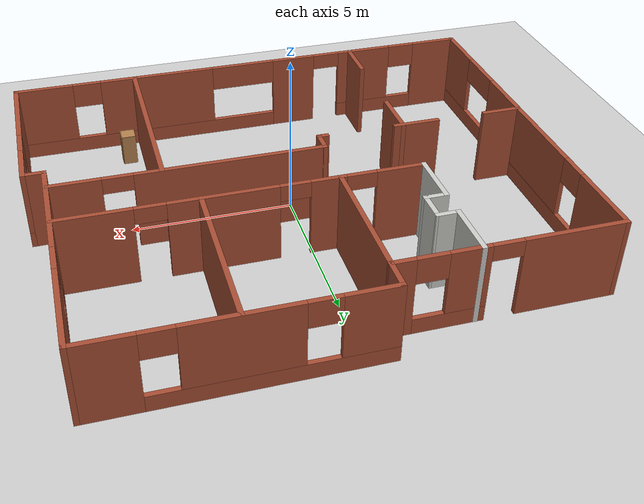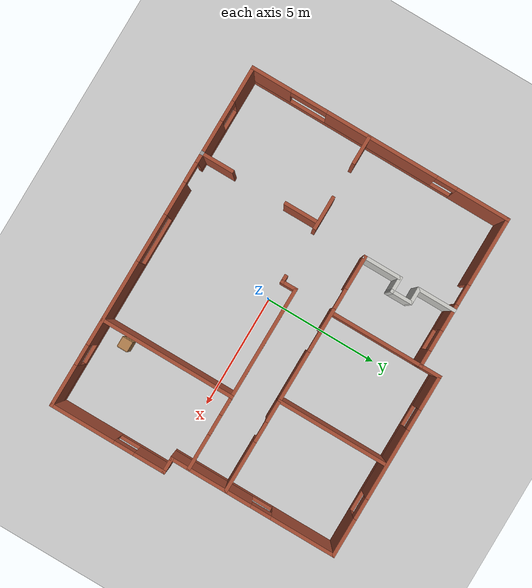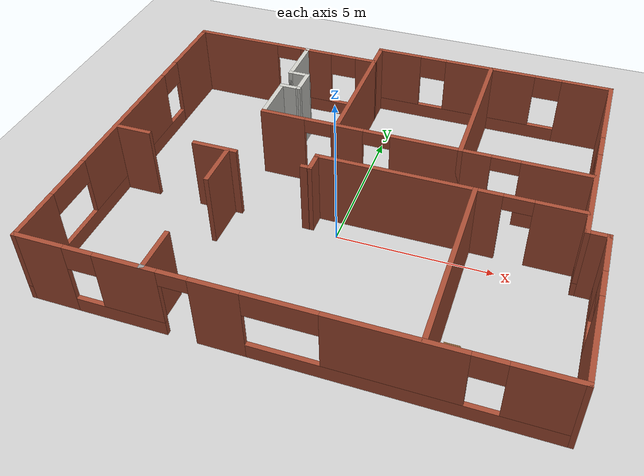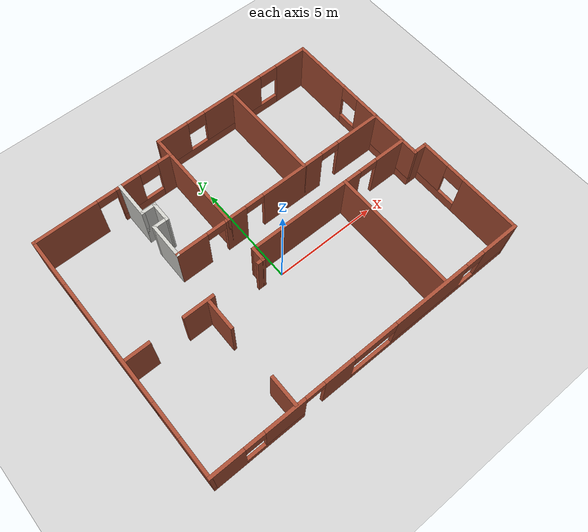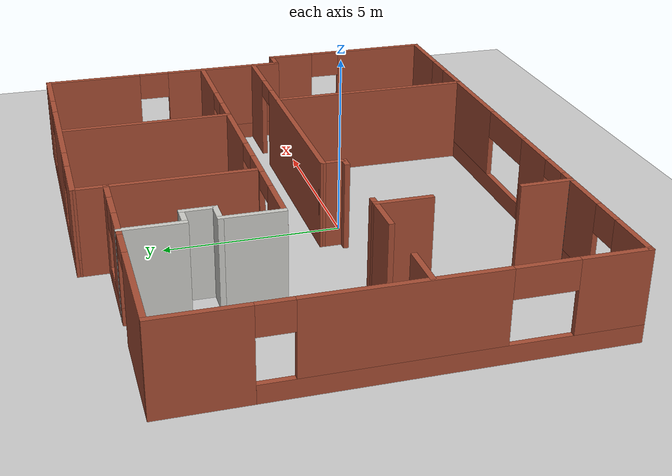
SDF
<sdf version="1.6">
 <world name="default">
  <model name="ground_plane">
   <static>1</static>
   <link name="link_gp">
    <collision name="collision">
     <geometry><plane><normal>0 0 1</normal><size>100 100</size></plane></geometry>
     <surface>
      <contact><collide_bitmask>65535</collide_bitmask></contact>
      <friction><ode><mu>100</mu><mu2>50</mu2></ode></friction>
     </surface>
    </collision>
    <visual name="visual">
     <cast_shadows>0</cast_shadows>
     <geometry><plane><normal>0 0 1</normal><size>100 100</size></plane></geometry>
     <material>
      <script><uri>file://media/materials/scripts/gazebo.material</uri><name>Gazebo/Grey</name></script>
     </material>
    </visual>
   </link>
  </model>
  <model name="Building_0">
   <pose>0.213868 1.09211 0 0 -0 0</pose>
   <link name="Wall_0">
    <pose>0 -6.22497 0 0 -0 1.8e-05</pose>
    <visual name="Wall_0_Visual_0">
     <pose>-6.95411 0 1.25 0 -0 0</pose>
     <geometry><box><size>1.59152 0.15 2.5</size></box></geometry>
     <material>
      <script><uri>file://media/materials/scripts/gazebo.material</uri><name>Gazebo/Bricks</name></script>
      <ambient>0.996078 0.47451 0.0196078 1</ambient>
     </material>
     <meta><layer>0</layer></meta>
    </visual>
    <collision name="Wall_0_Collision_0">
     <geometry><box><size>1.59152 0.15 2.5</size></box></geometry>
     <pose>-6.95411 0 1.25 0 -0 0</pose>
    </collision>
    <visual name="Wall_0_Visual_1">
     <pose>-1.72012 0 1.25 0 -0 0</pose>
     <geometry><box><size>1.46885 0.15 2.5</size></box></geometry>
     <material>
      <script><uri>file://media/materials/scripts/gazebo.material</uri><name>Gazebo/Bricks</name></script>
      <ambient>0.996078 0.47451 0.0196078 1</ambient>
     </material>
     <meta><layer>0</layer></meta>
    </visual>
    <collision name="Wall_0_Collision_1">
     <geometry><box><size>1.46885 0.15 2.5</size></box></geometry>
     <pose>-1.72012 0 1.25 0 -0 0</pose>
    </collision>
    <visual name="Wall_0_Visual_2">
     <pose>-4.75645 0 0.25 0 -0 0</pose>
     <geometry><box><size>2.8038 0.15 0.5</size></box></geometry>
     <material>
      <script><uri>file://media/materials/scripts/gazebo.material</uri><name>Gazebo/Bricks</name></script>
      <ambient>0.996078 0.47451 0.0196078 1</ambient>
     </material>
     <meta><layer>0</layer></meta>
    </visual>
    <collision name="Wall_0_Collision_2">
     <geometry><box><size>2.8038 0.15 0.5</size></box></geometry>
     <pose>-4.75645 0 0.25 0 -0 0</pose>
    </collision>
    <visual name="Wall_0_Visual_3">
     <pose>3.38209 0 0.25 0 -0 0</pose>
     <geometry><box><size>8.73556 0.15 0.5</size></box></geometry>
     <material>
      <script><uri>file://media/materials/scripts/gazebo.material</uri><name>Gazebo/Bricks</name></script>
      <ambient>0.996078 0.47451 0.0196078 1</ambient>
     </material>
     <meta><layer>0</layer></meta>
    </visual>
    <collision name="Wall_0_Collision_3">
     <geometry><box><size>8.73556 0.15 0.5</size></box></geometry>
     <pose>3.38209 0 0.25 0 -0 0</pose>
    </collision>
    <visual name="Wall_0_Visual_4">
     <pose>-4.30145 0 1.5 0 -0 0</pose>
     <geometry><box><size>1.8938 0.15 2</size></box></geometry>
     <material>
      <script><uri>file://media/materials/scripts/gazebo.material</uri><name>Gazebo/Bricks</name></script>
      <ambient>0.996078 0.47451 0.0196078 1</ambient>
     </material>
     <meta><layer>0</layer></meta>
    </visual>
    <collision name="Wall_0_Collision_4">
     <geometry><box><size>1.8938 0.15 2</size></box></geometry>
     <pose>-4.30145 0 1.5 0 -0 0</pose>
    </collision>
    <visual name="Wall_0_Visual_5">
     <pose>-4.30145 0 1.5 0 -0 0</pose>
     <geometry><box><size>1.8938 0.15 2</size></box></geometry>
     <material>
      <script><uri>file://media/materials/scripts/gazebo.material</uri><name>Gazebo/Bricks</name></script>
      <ambient>0.996078 0.47451 0.0196078 1</ambient>
     </material>
     <meta><layer>0</layer></meta>
    </visual>
    <collision name="Wall_0_Collision_5">
     <geometry><box><size>1.8938 0.15 2</size></box></geometry>
     <pose>-4.30145 0 1.5 0 -0 0</pose>
    </collision>
    <visual name="Wall_0_Visual_6">
     <pose>3.04432 0 1.5 0 -0 0</pose>
     <geometry><box><size>3.80004 0.15 2</size></box></geometry>
     <material>
      <script><uri>file://media/materials/scripts/gazebo.material</uri><name>Gazebo/Bricks</name></script>
      <ambient>0.996078 0.47451 0.0196078 1</ambient>
     </material>
     <meta><layer>0</layer></meta>
    </visual>
    <collision name="Wall_0_Collision_6">
     <geometry><box><size>3.80004 0.15 2</size></box></geometry>
     <pose>3.04432 0 1.5 0 -0 0</pose>
    </collision>
    <visual name="Wall_0_Visual_7">
     <pose>6.80211 0 1.5 0 -0 0</pose>
     <geometry><box><size>1.89552 0.15 2</size></box></geometry>
     <material>
      <script><uri>file://media/materials/scripts/gazebo.material</uri><name>Gazebo/Bricks</name></script>
      <ambient>0.996078 0.47451 0.0196078 1</ambient>
     </material>
     <meta><layer>0</layer></meta>
    </visual>
    <collision name="Wall_0_Collision_7">
     <geometry><box><size>1.89552 0.15 2</size></box></geometry>
     <pose>6.80211 0 1.5 0 -0 0</pose>
    </collision>
    <visual name="Wall_0_Visual_8">
     <pose>-5.70335 0 2.1 0 -0 0</pose>
     <geometry><box><size>0.91 0.15 0.8</size></box></geometry>
     <material>
      <script><uri>file://media/materials/scripts/gazebo.material</uri><name>Gazebo/Bricks</name></script>
      <ambient>0.996078 0.47451 0.0196078 1</ambient>
     </material>
     <meta><layer>0</layer></meta>
    </visual>
    <collision name="Wall_0_Collision_8">
     <geometry><box><size>0.91 0.15 0.8</size></box></geometry>
     <pose>-5.70335 0 2.1 0 -0 0</pose>
    </collision>
    <visual name="Wall_0_Visual_9">
     <pose>0.079304 0 2.1 0 -0 0</pose>
     <geometry><box><size>2.13 0.15 0.8</size></box></geometry>
     <material>
      <script><uri>file://media/materials/scripts/gazebo.material</uri><name>Gazebo/Bricks</name></script>
      <ambient>0.996078 0.47451 0.0196078 1</ambient>
     </material>
     <meta><layer>0</layer></meta>
    </visual>
    <collision name="Wall_0_Collision_9">
     <geometry><box><size>2.13 0.15 0.8</size></box></geometry>
     <pose>0.079304 0 2.1 0 -0 0</pose>
    </collision>
    <visual name="Wall_0_Visual_10">
     <pose>5.39934 0 2.1 0 -0 0</pose>
     <geometry><box><size>0.91 0.15 0.8</size></box></geometry>
     <material>
      <script><uri>file://media/materials/scripts/gazebo.material</uri><name>Gazebo/Bricks</name></script>
      <ambient>0.996078 0.47451 0.0196078 1</ambient>
     </material>
     <meta><layer>0</layer></meta>
    </visual>
    <collision name="Wall_0_Collision_10">
     <geometry><box><size>0.91 0.15 0.8</size></box></geometry>
     <pose>5.39934 0 2.1 0 -0 0</pose>
    </collision>
    <visual name="Wall_0_Visual_11">
     <pose>-2.90454 0 2.25 0 -0 0</pose>
     <geometry><box><size>0.9 0.15 0.5</size></box></geometry>
     <material>
      <script><uri>file://media/materials/scripts/gazebo.material</uri><name>Gazebo/Bricks</name></script>
      <ambient>0.996078 0.47451 0.0196078 1</ambient>
     </material>
     <meta><layer>0</layer></meta>
    </visual>
    <collision name="Wall_0_Collision_11">
     <geometry><box><size>0.9 0.15 0.5</size></box></geometry>
     <pose>-2.90454 0 2.25 0 -0 0</pose>
    </collision>
    <visual name="Wall_0_Visual_12">
     <pose>-2.90454 0 2.25 0 -0 0</pose>
     <geometry><box><size>0.9 0.15 0.5</size></box></geometry>
     <material>
      <script><uri>file://media/materials/scripts/gazebo.material</uri><name>Gazebo/Bricks</name></script>
      <ambient>0.996078 0.47451 0.0196078 1</ambient>
     </material>
     <meta><layer>0</layer></meta>
    </visual>
    <collision name="Wall_0_Collision_12">
     <geometry><box><size>0.9 0.15 0.5</size></box></geometry>
     <pose>-2.90454 0 2.25 0 -0 0</pose>
    </collision>
   </link>
   <link name="Wall_1">
    <pose>7.67487 -3.67484 0 0 -0 1.5708</pose>
    <visual name="Wall_1_Visual_0">
     <pose>-1.17636 0 1.25 0 -0 0</pose>
     <geometry><box><size>2.89728 0.15 2.5</size></box></geometry>
     <material>
      <script><uri>file://media/materials/scripts/gazebo.material</uri><name>Gazebo/Bricks</name></script>
      <ambient>0.996078 0.47451 0.0196078 1</ambient>
     </material>
     <meta><layer>0</layer></meta>
    </visual>
    <collision name="Wall_1_Collision_0">
     <geometry><box><size>2.89728 0.15 2.5</size></box></geometry>
     <pose>-1.17636 0 1.25 0 -0 0</pose>
    </collision>
    <visual name="Wall_1_Visual_1">
     <pose>1.44864 0 0.25 0 -0 0</pose>
     <geometry><box><size>2.35272 0.15 0.5</size></box></geometry>
     <material>
      <script><uri>file://media/materials/scripts/gazebo.material</uri><name>Gazebo/Bricks</name></script>
      <ambient>0.996078 0.47451 0.0196078 1</ambient>
     </material>
     <meta><layer>0</layer></meta>
    </visual>
    <collision name="Wall_1_Collision_1">
     <geometry><box><size>2.35272 0.15 0.5</size></box></geometry>
     <pose>1.44864 0 0.25 0 -0 0</pose>
    </collision>
    <visual name="Wall_1_Visual_2">
     <pose>1.90364 0 1.5 0 -0 0</pose>
     <geometry><box><size>1.44272 0.15 2</size></box></geometry>
     <material>
      <script><uri>file://media/materials/scripts/gazebo.material</uri><name>Gazebo/Bricks</name></script>
      <ambient>0.996078 0.47451 0.0196078 1</ambient>
     </material>
     <meta><layer>0</layer></meta>
    </visual>
    <collision name="Wall_1_Collision_2">
     <geometry><box><size>1.44272 0.15 2</size></box></geometry>
     <pose>1.90364 0 1.5 0 -0 0</pose>
    </collision>
    <visual name="Wall_1_Visual_3">
     <pose>0.727284 0 2.1 0 -0 0</pose>
     <geometry><box><size>0.91 0.15 0.8</size></box></geometry>
     <material>
      <script><uri>file://media/materials/scripts/gazebo.material</uri><name>Gazebo/Bricks</name></script>
      <ambient>0.996078 0.47451 0.0196078 1</ambient>
     </material>
     <meta><layer>0</layer></meta>
    </visual>
    <collision name="Wall_1_Collision_3">
     <geometry><box><size>0.91 0.15 0.8</size></box></geometry>
     <pose>0.727284 0 2.1 0 -0 0</pose>
    </collision>
   </link>
   <link name="Wall_10">
    <collision name="Wall_10_Collision">
     <geometry><box><size>0.75 0.15 2.5</size></box></geometry>
     <pose>0 0 1.25 0 -0 0</pose>
    </collision>
    <visual name="Wall_10_Visual">
     <pose>0 0 1.25 0 -0 0</pose>
     <geometry><box><size>0.75 0.15 2.5</size></box></geometry>
     <material>
      <script><uri>file://media/materials/scripts/gazebo.material</uri><name>Gazebo/Bricks</name></script>
      <ambient>1 1 1 1</ambient>
     </material>
     <meta><layer>0</layer></meta>
    </visual>
    <pose>-1.075 -0.651084 0 0 -0 1.57124</pose>
   </link>
   <link name="Wall_11">
    <pose>2.97487 -0.351058 0 0 -0 0</pose>
    <visual name="Wall_11_Visual_0">
     <pose>-1.23718 0 1.25 0 -0 0</pose>
     <geometry><box><size>5.77565 0.15 2.5</size></box></geometry>
     <material>
      <script><uri>file://media/materials/scripts/gazebo.material</uri><name>Gazebo/Bricks</name></script>
      <ambient>1 1 1 1</ambient>
     </material>
     <meta><layer>0</layer></meta>
    </visual>
    <collision name="Wall_11_Collision_0">
     <geometry><box><size>5.77565 0.15 2.5</size></box></geometry>
     <pose>-1.23718 0 1.25 0 -0 0</pose>
    </collision>
    <visual name="Wall_11_Visual_1">
     <pose>3.33782 0 1.25 0 -0 0</pose>
     <geometry><box><size>1.57435 0.15 2.5</size></box></geometry>
     <material>
      <script><uri>file://media/materials/scripts/gazebo.material</uri><name>Gazebo/Bricks</name></script>
      <ambient>1 1 1 1</ambient>
     </material>
     <meta><layer>0</layer></meta>
    </visual>
    <collision name="Wall_11_Collision_1">
     <geometry><box><size>1.57435 0.15 2.5</size></box></geometry>
     <pose>3.33782 0 1.25 0 -0 0</pose>
    </collision>
    <visual name="Wall_11_Visual_2">
     <pose>2.10065 0 2.25 0 -0 0</pose>
     <geometry><box><size>0.9 0.15 0.5</size></box></geometry>
     <material>
      <script><uri>file://media/materials/scripts/gazebo.material</uri><name>Gazebo/Bricks</name></script>
      <ambient>1 1 1 1</ambient>
     </material>
     <meta><layer>0</layer></meta>
    </visual>
    <collision name="Wall_11_Collision_2">
     <geometry><box><size>0.9 0.15 0.5</size></box></geometry>
     <pose>2.10065 0 2.25 0 -0 0</pose>
    </collision>
   </link>
   <link name="Wall_18">
    <pose>7.07487 2.55016 0 0 -0 -1.5708</pose>
    <visual name="Wall_18_Visual_0">
     <pose>-2.28748 0 1.25 0 -0 0</pose>
     <geometry><box><size>2.92503 0.15 2.5</size></box></geometry>
     <material>
      <script><uri>file://media/materials/scripts/gazebo.material</uri><name>Gazebo/Bricks</name></script>
      <ambient>0.996078 0.47451 0.0196078 1</ambient>
     </material>
     <meta><layer>0</layer></meta>
    </visual>
    <collision name="Wall_18_Collision_0">
     <geometry><box><size>2.92503 0.15 2.5</size></box></geometry>
     <pose>-2.28748 0 1.25 0 -0 0</pose>
    </collision>
    <visual name="Wall_18_Visual_1">
     <pose>1.46252 0 0.25 0 -0 0</pose>
     <geometry><box><size>4.57497 0.15 0.5</size></box></geometry>
     <material>
      <script><uri>file://media/materials/scripts/gazebo.material</uri><name>Gazebo/Bricks</name></script>
      <ambient>0.996078 0.47451 0.0196078 1</ambient>
     </material>
     <meta><layer>0</layer></meta>
    </visual>
    <collision name="Wall_18_Collision_1">
     <geometry><box><size>4.57497 0.15 0.5</size></box></geometry>
     <pose>1.46252 0 0.25 0 -0 0</pose>
    </collision>
    <visual name="Wall_18_Visual_2">
     <pose>1.91752 0 1.5 0 -0 0</pose>
     <geometry><box><size>3.66497 0.15 2</size></box></geometry>
     <material>
      <script><uri>file://media/materials/scripts/gazebo.material</uri><name>Gazebo/Bricks</name></script>
      <ambient>0.996078 0.47451 0.0196078 1</ambient>
     </material>
     <meta><layer>0</layer></meta>
    </visual>
    <collision name="Wall_18_Collision_2">
     <geometry><box><size>3.66497 0.15 2</size></box></geometry>
     <pose>1.91752 0 1.5 0 -0 0</pose>
    </collision>
    <visual name="Wall_18_Visual_3">
     <pose>-0.369968 0 2.1 0 -0 0</pose>
     <geometry><box><size>0.91 0.15 0.8</size></box></geometry>
     <material>
      <script><uri>file://media/materials/scripts/gazebo.material</uri><name>Gazebo/Bricks</name></script>
      <ambient>0.996078 0.47451 0.0196078 1</ambient>
     </material>
     <meta><layer>0</layer></meta>
    </visual>
    <collision name="Wall_18_Collision_3">
     <geometry><box><size>0.91 0.15 0.8</size></box></geometry>
     <pose>-0.369968 0 2.1 0 -0 0</pose>
    </collision>
   </link>
   <link name="Wall_2">
    <collision name="Wall_2_Collision">
     <geometry><box><size>0.75 0.15 2.5</size></box></geometry>
     <pose>0 0 1.25 0 -0 0</pose>
    </collision>
    <visual name="Wall_2_Visual">
     <pose>0 0 1.25 0 -0 0</pose>
     <geometry><box><size>0.75 0.15 2.5</size></box></geometry>
     <material>
      <script><uri>file://media/materials/scripts/gazebo.material</uri><name>Gazebo/Bricks</name></script>
      <ambient>0.996078 0.47451 0.0196078 1</ambient>
     </material>
     <meta><layer>0</layer></meta>
    </visual>
    <pose>7.37487 -1.12484 0 0 -0 3.14159</pose>
   </link>
   <link name="Wall_20">
    <pose>1.74813 1.33189 0 0 -0 0</pose>
    <visual name="Wall_20_Visual_0">
     <pose>-4.61431 0 1.25 0 -0 0</pose>
     <geometry><box><size>1.52138 0.15 2.5</size></box></geometry>
     <material>
      <script><uri>file://media/materials/scripts/gazebo.material</uri><name>Gazebo/Bricks</name></script>
      <ambient>1 1 1 1</ambient>
     </material>
     <meta><layer>0</layer></meta>
    </visual>
    <collision name="Wall_20_Collision_0">
     <geometry><box><size>1.52138 0.15 2.5</size></box></geometry>
     <pose>-4.61431 0 1.25 0 -0 0</pose>
    </collision>
    <visual name="Wall_20_Visual_1">
     <pose>-2.42081 0 1.25 0 -0 0</pose>
     <geometry><box><size>1.06562 0.15 2.5</size></box></geometry>
     <material>
      <script><uri>file://media/materials/scripts/gazebo.material</uri><name>Gazebo/Bricks</name></script>
      <ambient>1 1 1 1</ambient>
     </material>
     <meta><layer>0</layer></meta>
    </visual>
    <collision name="Wall_20_Collision_1">
     <geometry><box><size>1.06562 0.15 2.5</size></box></geometry>
     <pose>-2.42081 0 1.25 0 -0 0</pose>
    </collision>
    <visual name="Wall_20_Visual_2">
     <pose>0.609298 0 1.25 0 -0 0</pose>
     <geometry><box><size>3.1946 0.15 2.5</size></box></geometry>
     <material>
      <script><uri>file://media/materials/scripts/gazebo.material</uri><name>Gazebo/Bricks</name></script>
      <ambient>1 1 1 1</ambient>
     </material>
     <meta><layer>0</layer></meta>
    </visual>
    <collision name="Wall_20_Collision_2">
     <geometry><box><size>3.1946 0.15 2.5</size></box></geometry>
     <pose>0.609298 0 1.25 0 -0 0</pose>
    </collision>
    <visual name="Wall_20_Visual_3">
     <pose>4.2408 0 1.25 0 -0 0</pose>
     <geometry><box><size>2.2684 0.15 2.5</size></box></geometry>
     <material>
      <script><uri>file://media/materials/scripts/gazebo.material</uri><name>Gazebo/Bricks</name></script>
      <ambient>1 1 1 1</ambient>
     </material>
     <meta><layer>0</layer></meta>
    </visual>
    <collision name="Wall_20_Collision_3">
     <geometry><box><size>2.2684 0.15 2.5</size></box></geometry>
     <pose>4.2408 0 1.25 0 -0 0</pose>
    </collision>
    <visual name="Wall_20_Visual_4">
     <pose>-3.40362 0 2.25 0 -0 0</pose>
     <geometry><box><size>0.9 0.15 0.5</size></box></geometry>
     <material>
      <script><uri>file://media/materials/scripts/gazebo.material</uri><name>Gazebo/Bricks</name></script>
      <ambient>1 1 1 1</ambient>
     </material>
     <meta><layer>0</layer></meta>
    </visual>
    <collision name="Wall_20_Collision_4">
     <geometry><box><size>0.9 0.15 0.5</size></box></geometry>
     <pose>-3.40362 0 2.25 0 -0 0</pose>
    </collision>
    <visual name="Wall_20_Visual_5">
     <pose>-1.438 0 2.25 0 -0 0</pose>
     <geometry><box><size>0.9 0.15 0.5</size></box></geometry>
     <material>
      <script><uri>file://media/materials/scripts/gazebo.material</uri><name>Gazebo/Bricks</name></script>
      <ambient>1 1 1 1</ambient>
     </material>
     <meta><layer>0</layer></meta>
    </visual>
    <collision name="Wall_20_Collision_5">
     <geometry><box><size>0.9 0.15 0.5</size></box></geometry>
     <pose>-1.438 0 2.25 0 -0 0</pose>
    </collision>
    <visual name="Wall_20_Visual_6">
     <pose>2.6566 0 2.25 0 -0 0</pose>
     <geometry><box><size>0.9 0.15 0.5</size></box></geometry>
     <material>
      <script><uri>file://media/materials/scripts/gazebo.material</uri><name>Gazebo/Bricks</name></script>
      <ambient>1 1 1 1</ambient>
     </material>
     <meta><layer>0</layer></meta>
    </visual>
    <collision name="Wall_20_Collision_6">
     <geometry><box><size>0.9 0.15 0.5</size></box></geometry>
     <pose>2.6566 0 2.25 0 -0 0</pose>
    </collision>
   </link>
   <link name="Wall_22">
    <collision name="Wall_22_Collision">
     <geometry><box><size>1.75 0.15 2.5</size></box></geometry>
     <pose>0 0 1.25 0 -0 0</pose>
    </collision>
    <visual name="Wall_22_Visual">
     <pose>0 0 1.25 0 -0 0</pose>
     <geometry><box><size>1.75 0.15 2.5</size></box></geometry>
     <material>
      <script><uri>file://media/materials/scripts/gazebo.material</uri><name>Gazebo/CeilingTiled</name></script>
      <ambient>0.435294 0.796078 0.67451 1</ambient>
     </material>
     <meta><layer>0</layer></meta>
    </visual>
    <pose>-3.5522 4.57947 0 0 -0 -1.5708</pose>
   </link>
   <link name="Wall_26">
    <collision name="Wall_26_Collision">
     <geometry><box><size>1.74786 0.15 2.5</size></box></geometry>
     <pose>0 0 1.25 0 -0 0</pose>
    </collision>
    <visual name="Wall_26_Visual">
     <pose>0 0 1.25 0 -0 0</pose>
     <geometry><box><size>1.74786 0.15 2.5</size></box></geometry>
     <material>
      <script><uri>file://media/materials/scripts/gazebo.material</uri><name>Gazebo/CeilingTiled</name></script>
      <ambient>0.435294 0.796078 0.67451 1</ambient>
     </material>
     <meta><layer>0</layer></meta>
    </visual>
    <pose>-3.55187 2.13089 0 0 -0 -1.5708</pose>
   </link>
   <link name="Wall_28">
    <collision name="Wall_28_Collision">
     <geometry><box><size>0.75 0.15 2.5</size></box></geometry>
     <pose>0 0 1.25 0 -0 0</pose>
    </collision>
    <visual name="Wall_28_Visual">
     <pose>0 0 1.25 0 -0 0</pose>
     <geometry><box><size>0.75 0.15 2.5</size></box></geometry>
     <material>
      <script><uri>file://media/materials/scripts/gazebo.material</uri><name>Gazebo/CeilingTiled</name></script>
      <ambient>0.435294 0.796078 0.67451 1</ambient>
     </material>
     <meta><layer>0</layer></meta>
    </visual>
    <pose>-3.2522 3.77947 0 0 -0 0</pose>
   </link>
   <link name="Wall_29">
    <collision name="Wall_29_Collision">
     <geometry><box><size>0.999577 0.15 2.5</size></box></geometry>
     <pose>0 0 1.25 0 -0 0</pose>
    </collision>
    <visual name="Wall_29_Visual">
     <pose>0 0 1.25 0 -0 0</pose>
     <geometry><box><size>0.999577 0.15 2.5</size></box></geometry>
     <material>
      <script><uri>file://media/materials/scripts/gazebo.material</uri><name>Gazebo/CeilingTiled</name></script>
      <ambient>0.435294 0.796078 0.67451 1</ambient>
     </material>
     <meta><layer>0</layer></meta>
    </visual>
    <pose>-2.95203 3.35468 0 0 -0 -1.5704</pose>
   </link>
   <link name="Wall_30">
    <collision name="Wall_30_Collision">
     <geometry><box><size>0.750333 0.15 2.5</size></box></geometry>
     <pose>0 0 1.25 0 -0 0</pose>
    </collision>
    <visual name="Wall_30_Visual">
     <pose>0 0 1.25 0 -0 0</pose>
     <geometry><box><size>0.750333 0.15 2.5</size></box></geometry>
     <material>
      <script><uri>file://media/materials/scripts/gazebo.material</uri><name>Gazebo/CeilingTiled</name></script>
      <ambient>0.435294 0.796078 0.67451 1</ambient>
     </material>
     <meta><layer>0</layer></meta>
    </visual>
    <pose>-3.25187 2.92989 0 0 -0 3.14159</pose>
   </link>
   <link name="Wall_32">
    <collision name="Wall_32_Collision">
     <geometry><box><size>4.193 0.15 2.5</size></box></geometry>
     <pose>0 0 1.25 0 -0 0</pose>
    </collision>
    <visual name="Wall_32_Visual">
     <pose>0 0 1.25 0 -0 0</pose>
     <geometry><box><size>4.193 0.15 2.5</size></box></geometry>
     <material>
      <script><uri>file://media/materials/scripts/gazebo.material</uri><name>Gazebo/Bricks</name></script>
      <ambient>1 1 1 1</ambient>
     </material>
     <meta><layer>0</layer></meta>
    </visual>
    <pose>-1.02487 3.35339 0 0 -0 -1.5708</pose>
   </link>
   <link name="Wall_34">
    <collision name="Wall_34_Collision">
     <geometry><box><size>5.043 0.15 2.5</size></box></geometry>
     <pose>0 0 1.25 0 -0 0</pose>
    </collision>
    <visual name="Wall_34_Visual">
     <pose>0 0 1.25 0 -0 0</pose>
     <geometry><box><size>5.043 0.15 2.5</size></box></geometry>
     <material>
      <script><uri>file://media/materials/scripts/gazebo.material</uri><name>Gazebo/Bricks</name></script>
      <ambient>1 1 1 1</ambient>
     </material>
     <meta><layer>0</layer></meta>
    </visual>
    <pose>2.99413 3.77839 0 0 -0 -1.5708</pose>
   </link>
   <link name="Wall_38">
    <collision name="Wall_38_Collision">
     <geometry><box><size>5.98268 0.15 2.5</size></box></geometry>
     <pose>0 0 1.25 0 -0 0</pose>
    </collision>
    <visual name="Wall_38_Visual">
     <pose>0 0 1.25 0 -0 0</pose>
     <geometry><box><size>5.98268 0.15 2.5</size></box></geometry>
     <material>
      <script><uri>file://media/materials/scripts/gazebo.material</uri><name>Gazebo/Bricks</name></script>
      <ambient>1 1 1 1</ambient>
     </material>
     <meta><layer>0</layer></meta>
    </visual>
    <pose>3.80313 -3.26761 0 0 -0 -1.5708</pose>
   </link>
   <link name="Wall_4">
    <pose>3.02487 6.22516 0 0 -0 3.14159</pose>
    <visual name="Wall_4_Visual_0">
     <pose>-3.26906 0 1.25 0 -0 0</pose>
     <geometry><box><size>1.71187 0.15 2.5</size></box></geometry>
     <material>
      <script><uri>file://media/materials/scripts/gazebo.material</uri><name>Gazebo/Bricks</name></script>
      <ambient>0.996078 0.47451 0.0196078 1</ambient>
     </material>
     <meta><layer>0</layer></meta>
    </visual>
    <collision name="Wall_4_Collision_0">
     <geometry><box><size>1.71187 0.15 2.5</size></box></geometry>
     <pose>-3.26906 0 1.25 0 -0 0</pose>
    </collision>
    <visual name="Wall_4_Visual_1">
     <pose>0.855937 0 0.25 0 -0 0</pose>
     <geometry><box><size>6.53813 0.15 0.5</size></box></geometry>
     <material>
      <script><uri>file://media/materials/scripts/gazebo.material</uri><name>Gazebo/Bricks</name></script>
      <ambient>0.996078 0.47451 0.0196078 1</ambient>
     </material>
     <meta><layer>0</layer></meta>
    </visual>
    <collision name="Wall_4_Collision_1">
     <geometry><box><size>6.53813 0.15 0.5</size></box></geometry>
     <pose>0.855937 0 0.25 0 -0 0</pose>
    </collision>
    <visual name="Wall_4_Visual_2">
     <pose>0.065803 0 1.5 0 -0 0</pose>
     <geometry><box><size>3.13786 0.15 2</size></box></geometry>
     <material>
      <script><uri>file://media/materials/scripts/gazebo.material</uri><name>Gazebo/Bricks</name></script>
      <ambient>0.996078 0.47451 0.0196078 1</ambient>
     </material>
     <meta><layer>0</layer></meta>
    </visual>
    <collision name="Wall_4_Collision_2">
     <geometry><box><size>3.13786 0.15 2</size></box></geometry>
     <pose>0.065803 0 1.5 0 -0 0</pose>
    </collision>
    <visual name="Wall_4_Visual_3">
     <pose>3.33487 0 1.5 0 -0 0</pose>
     <geometry><box><size>1.58027 0.15 2</size></box></geometry>
     <material>
      <script><uri>file://media/materials/scripts/gazebo.material</uri><name>Gazebo/Bricks</name></script>
      <ambient>0.996078 0.47451 0.0196078 1</ambient>
     </material>
     <meta><layer>0</layer></meta>
    </visual>
    <collision name="Wall_4_Collision_3">
     <geometry><box><size>1.58027 0.15 2</size></box></geometry>
     <pose>3.33487 0 1.5 0 -0 0</pose>
    </collision>
    <visual name="Wall_4_Visual_4">
     <pose>-1.95813 0 2.1 0 -0 0</pose>
     <geometry><box><size>0.91 0.15 0.8</size></box></geometry>
     <material>
      <script><uri>file://media/materials/scripts/gazebo.material</uri><name>Gazebo/Bricks</name></script>
      <ambient>0.996078 0.47451 0.0196078 1</ambient>
     </material>
     <meta><layer>0</layer></meta>
    </visual>
    <collision name="Wall_4_Collision_4">
     <geometry><box><size>0.91 0.15 0.8</size></box></geometry>
     <pose>-1.95813 0 2.1 0 -0 0</pose>
    </collision>
    <visual name="Wall_4_Visual_5">
     <pose>2.08973 0 2.1 0 -0 0</pose>
     <geometry><box><size>0.91 0.15 0.8</size></box></geometry>
     <material>
      <script><uri>file://media/materials/scripts/gazebo.material</uri><name>Gazebo/Bricks</name></script>
      <ambient>0.996078 0.47451 0.0196078 1</ambient>
     </material>
     <meta><layer>0</layer></meta>
    </visual>
    <collision name="Wall_4_Collision_5">
     <geometry><box><size>0.91 0.15 0.8</size></box></geometry>
     <pose>2.08973 0 2.1 0 -0 0</pose>
    </collision>
   </link>
   <link name="Wall_43">
    <collision name="Wall_43_Collision">
     <geometry><box><size>1.25 0.15 2.5</size></box></geometry>
     <pose>0 0 1.25 0 -0 0</pose>
    </collision>
    <visual name="Wall_43_Visual">
     <pose>0 0 1.25 0 -0 0</pose>
     <geometry><box><size>1.25 0.15 2.5</size></box></geometry>
     <material>
      <script><uri>file://media/materials/scripts/gazebo.material</uri><name>Gazebo/Bricks</name></script>
      <ambient>1 1 1 1</ambient>
     </material>
     <meta><layer>0</layer></meta>
    </visual>
    <pose>-7.07319 -0.935189 0 0 -0 0</pose>
   </link>
   <link name="Wall_45">
    <collision name="Wall_45_Collision">
     <geometry><box><size>1.5 0.15 2.5</size></box></geometry>
     <pose>0 0 1.25 0 -0 0</pose>
    </collision>
    <visual name="Wall_45_Visual">
     <pose>0 0 1.25 0 -0 0</pose>
     <geometry><box><size>1.5 0.15 2.5</size></box></geometry>
     <material>
      <script><uri>file://media/materials/scripts/gazebo.material</uri><name>Gazebo/Bricks</name></script>
      <ambient>1 1 1 1</ambient>
     </material>
     <meta><layer>0</layer></meta>
    </visual>
    <pose>-4.21878 -0.935189 0 0 -0 0</pose>
   </link>
   <link name="Wall_47">
    <collision name="Wall_47_Collision">
     <geometry><box><size>0.383939 0.15 2.5</size></box></geometry>
     <pose>0 0 1.25 0 -0 0</pose>
    </collision>
    <visual name="Wall_47_Visual">
     <pose>0 0 1.25 0 -0 0</pose>
     <geometry><box><size>0.383939 0.15 2.5</size></box></geometry>
     <material>
      <script><uri>file://media/materials/scripts/gazebo.material</uri><name>Gazebo/Bricks</name></script>
      <ambient>1 1 1 1</ambient>
     </material>
     <meta><layer>0</layer></meta>
    </visual>
    <pose>-1.19187 -0.95111 0 0 -0 0</pose>
   </link>
   <link name="Wall_49">
    <collision name="Wall_49_Collision">
     <geometry><box><size>0.16 0.15 2.5</size></box></geometry>
     <pose>0 0 1.25 0 -0 0</pose>
    </collision>
    <visual name="Wall_49_Visual">
     <pose>0 0 1.25 0 -0 0</pose>
     <geometry><box><size>0.16 0.15 2.5</size></box></geometry>
     <material>
      <script><uri>file://media/materials/scripts/gazebo.material</uri><name>Gazebo/Grey</name></script>
      <ambient>1 1 1 1</ambient>
     </material>
     <meta><layer>0</layer></meta>
    </visual>
    <pose>-3.78556 -6.22393 0 0 -0 0</pose>
   </link>
   <link name="Wall_5">
    <collision name="Wall_5_Collision">
     <geometry><box><size>1 0.15 2.5</size></box></geometry>
     <pose>0 0 1.25 0 -0 0</pose>
    </collision>
    <visual name="Wall_5_Visual">
     <pose>0 0 1.25 0 -0 0</pose>
     <geometry><box><size>1 0.15 2.5</size></box></geometry>
     <material>
      <script><uri>file://media/materials/scripts/gazebo.material</uri><name>Gazebo/Bricks</name></script>
      <ambient>1 1 1 1</ambient>
     </material>
     <meta><layer>0</layer></meta>
    </visual>
    <pose>-1.025 5.80003 0 0 -0 -1.57048</pose>
   </link>
   <link name="Wall_50">
    <collision name="Wall_50_Collision">
     <geometry><box><size>1.5 0.15 2.5</size></box></geometry>
     <pose>0 0 1.25 0 -0 0</pose>
    </collision>
    <visual name="Wall_50_Visual">
     <pose>0 0 1.25 0 -0 0</pose>
     <geometry><box><size>1.5 0.15 2.5</size></box></geometry>
     <material>
      <script><uri>file://media/materials/scripts/gazebo.material</uri><name>Gazebo/Bricks</name></script>
      <ambient>1 1 1 1</ambient>
     </material>
     <meta><layer>0</layer></meta>
    </visual>
    <pose>-3.78056 -5.54893 0 0 -0 1.5708</pose>
   </link>
   <link name="Wall_54">
    <collision name="Wall_54_Collision">
     <geometry><box><size>1.608 0.15 2.5</size></box></geometry>
     <pose>0 0 1.25 0 -0 0</pose>
    </collision>
    <visual name="Wall_54_Visual">
     <pose>0 0 1.25 0 -0 0</pose>
     <geometry><box><size>1.608 0.15 2.5</size></box></geometry>
     <material>
      <script><uri>file://media/materials/scripts/gazebo.material</uri><name>Gazebo/Bricks</name></script>
      <ambient>1 1 1 1</ambient>
     </material>
     <meta><layer>0</layer></meta>
    </visual>
    <pose>-3.77287 -1.66411 0 0 -0 1.5708</pose>
   </link>
   <link name="Wall_6">
    <pose>-4.34987 5.37489 0 0 -0 3.14159</pose>
    <visual name="Wall_6_Visual_0">
     <pose>-3.02019 0 1.25 0 -0 0</pose>
     <geometry><box><size>0.759364 0.15 2.5</size></box></geometry>
     <material>
      <script><uri>file://media/materials/scripts/gazebo.material</uri><name>Gazebo/Bricks</name></script>
      <ambient>0.996078 0.47451 0.0196078 1</ambient>
     </material>
     <meta><layer>0</layer></meta>
    </visual>
    <collision name="Wall_6_Collision_0">
     <geometry><box><size>0.759364 0.15 2.5</size></box></geometry>
     <pose>-3.02019 0 1.25 0 -0 0</pose>
    </collision>
    <visual name="Wall_6_Visual_1">
     <pose>1.87306 0 1.25 0 -0 0</pose>
     <geometry><box><size>3.05362 0.15 2.5</size></box></geometry>
     <material>
      <script><uri>file://media/materials/scripts/gazebo.material</uri><name>Gazebo/Bricks</name></script>
      <ambient>0.996078 0.47451 0.0196078 1</ambient>
     </material>
     <meta><layer>0</layer></meta>
    </visual>
    <collision name="Wall_6_Collision_1">
     <geometry><box><size>3.05362 0.15 2.5</size></box></geometry>
     <pose>1.87306 0 1.25 0 -0 0</pose>
    </collision>
    <visual name="Wall_6_Visual_2">
     <pose>-1.59713 0 0.25 0 -0 0</pose>
     <geometry><box><size>2.08676 0.15 0.5</size></box></geometry>
     <material>
      <script><uri>file://media/materials/scripts/gazebo.material</uri><name>Gazebo/Bricks</name></script>
      <ambient>0.996078 0.47451 0.0196078 1</ambient>
     </material>
     <meta><layer>0</layer></meta>
    </visual>
    <collision name="Wall_6_Collision_2">
     <geometry><box><size>2.08676 0.15 0.5</size></box></geometry>
     <pose>-1.59713 0 0.25 0 -0 0</pose>
    </collision>
    <visual name="Wall_6_Visual_3">
     <pose>-1.14213 0 1.5 0 -0 0</pose>
     <geometry><box><size>1.17675 0.15 2</size></box></geometry>
     <material>
      <script><uri>file://media/materials/scripts/gazebo.material</uri><name>Gazebo/Bricks</name></script>
      <ambient>0.996078 0.47451 0.0196078 1</ambient>
     </material>
     <meta><layer>0</layer></meta>
    </visual>
    <collision name="Wall_6_Collision_3">
     <geometry><box><size>1.17675 0.15 2</size></box></geometry>
     <pose>-1.14213 0 1.5 0 -0 0</pose>
    </collision>
    <visual name="Wall_6_Visual_4">
     <pose>-2.1855 0 2.1 0 -0 0</pose>
     <geometry><box><size>0.91 0.15 0.8</size></box></geometry>
     <material>
      <script><uri>file://media/materials/scripts/gazebo.material</uri><name>Gazebo/Bricks</name></script>
      <ambient>0.996078 0.47451 0.0196078 1</ambient>
     </material>
     <meta><layer>0</layer></meta>
    </visual>
    <collision name="Wall_6_Collision_4">
     <geometry><box><size>0.91 0.15 0.8</size></box></geometry>
     <pose>-2.1855 0 2.1 0 -0 0</pose>
    </collision>
    <visual name="Wall_6_Visual_5">
     <pose>-0.103749 0 2.25 0 -0 0</pose>
     <geometry><box><size>0.9 0.15 0.5</size></box></geometry>
     <material>
      <script><uri>file://media/materials/scripts/gazebo.material</uri><name>Gazebo/Bricks</name></script>
      <ambient>0.996078 0.47451 0.0196078 1</ambient>
     </material>
     <meta><layer>0</layer></meta>
    </visual>
    <collision name="Wall_6_Collision_5">
     <geometry><box><size>0.9 0.15 0.5</size></box></geometry>
     <pose>-0.103749 0 2.25 0 -0 0</pose>
    </collision>
   </link>
   <link name="Wall_7">
    <pose>-7.67487 -0.42511 0 0 -0 -1.5708</pose>
    <visual name="Wall_7_Visual_0">
     <pose>-4.67948 0 1.25 0 -0 0</pose>
     <geometry><box><size>2.39115 0.15 2.5</size></box></geometry>
     <material>
      <script><uri>file://media/materials/scripts/gazebo.material</uri><name>Gazebo/Bricks</name></script>
      <ambient>0.996078 0.47451 0.0196078 1</ambient>
     </material>
     <meta><layer>0</layer></meta>
    </visual>
    <collision name="Wall_7_Collision_0">
     <geometry><box><size>2.39115 0.15 2.5</size></box></geometry>
     <pose>-4.67948 0 1.25 0 -0 0</pose>
    </collision>
    <visual name="Wall_7_Visual_1">
     <pose>1.19558 0 0.25 0 -0 0</pose>
     <geometry><box><size>9.35896 0.15 0.5</size></box></geometry>
     <material>
      <script><uri>file://media/materials/scripts/gazebo.material</uri><name>Gazebo/Bricks</name></script>
      <ambient>0.996078 0.47451 0.0196078 1</ambient>
     </material>
     <meta><layer>0</layer></meta>
    </visual>
    <collision name="Wall_7_Collision_1">
     <geometry><box><size>9.35896 0.15 0.5</size></box></geometry>
     <pose>1.19558 0 0.25 0 -0 0</pose>
    </collision>
    <visual name="Wall_7_Visual_2">
     <pose>-0.073457 0 1.5 0 -0 0</pose>
     <geometry><box><size>5.00089 0.15 2</size></box></geometry>
     <material>
      <script><uri>file://media/materials/scripts/gazebo.material</uri><name>Gazebo/Bricks</name></script>
      <ambient>0.996078 0.47451 0.0196078 1</ambient>
     </material>
     <meta><layer>0</layer></meta>
    </visual>
    <collision name="Wall_7_Collision_2">
     <geometry><box><size>5.00089 0.15 2</size></box></geometry>
     <pose>-0.073457 0 1.5 0 -0 0</pose>
    </collision>
    <visual name="Wall_7_Visual_3">
     <pose>4.96352 0 1.5 0 -0 0</pose>
     <geometry><box><size>1.82306 0.15 2</size></box></geometry>
     <material>
      <script><uri>file://media/materials/scripts/gazebo.material</uri><name>Gazebo/Bricks</name></script>
      <ambient>0.996078 0.47451 0.0196078 1</ambient>
     </material>
     <meta><layer>0</layer></meta>
    </visual>
    <collision name="Wall_7_Collision_3">
     <geometry><box><size>1.82306 0.15 2</size></box></geometry>
     <pose>4.96352 0 1.5 0 -0 0</pose>
    </collision>
    <visual name="Wall_7_Visual_4">
     <pose>-3.0289 0 2.1 0 -0 0</pose>
     <geometry><box><size>0.91 0.15 0.8</size></box></geometry>
     <material>
      <script><uri>file://media/materials/scripts/gazebo.material</uri><name>Gazebo/Bricks</name></script>
      <ambient>0.996078 0.47451 0.0196078 1</ambient>
     </material>
     <meta><layer>0</layer></meta>
    </visual>
    <collision name="Wall_7_Collision_4">
     <geometry><box><size>0.91 0.15 0.8</size></box></geometry>
     <pose>-3.0289 0 2.1 0 -0 0</pose>
    </collision>
    <visual name="Wall_7_Visual_5">
     <pose>3.23949 0 2.1 0 -0 0</pose>
     <geometry><box><size>1.625 0.15 0.8</size></box></geometry>
     <material>
      <script><uri>file://media/materials/scripts/gazebo.material</uri><name>Gazebo/Bricks</name></script>
      <ambient>0.996078 0.47451 0.0196078 1</ambient>
     </material>
     <meta><layer>0</layer></meta>
    </visual>
    <collision name="Wall_7_Collision_5">
     <geometry><box><size>1.625 0.15 0.8</size></box></geometry>
     <pose>3.23949 0 2.1 0 -0 0</pose>
    </collision>
   </link>
   <static>1</static>
  </model>
  <model name="cabinet_clone_1">
   <static>1</static>
   <link name="cabinet_bottom_plate">
    <inertial>
     <pose>0 0 -1 0 -0 0</pose>
     <inertia><ixx>2.05</ixx><ixy>0</ixy><ixz>0</ixz><iyy>2.05</iyy><iyz>0</iyz><izz>2.05</izz></inertia>
     <mass>25</mass>
    </inertial>
    <collision name="cabinet_bottom_plate_geom">
     <pose>0 0 0.01 0 -0 0</pose>
     <geometry><box><size>0.45 0.45 0.02</size></box></geometry>
    </collision>
    <visual name="cabinet_bottom_plate_geom_visual">
     <pose>0 0 0.01 0 -0 0</pose>
     <geometry><box><size>0.45 0.45 0.02</size></box></geometry>
     <material>
      <script><uri>file://media/materials/scripts/gazebo.material</uri><name>Gazebo/Wood</name></script>
     </material>
    </visual>
    <collision name="cabinet_bottom_plate_geom_cabinet_back_plate">
     <pose>0.235 0 0.51 0 -0 0</pose>
     <geometry><box><size>0.02 0.45 1.02</size></box></geometry>
    </collision>
    <visual name="cabinet_bottom_plate_geom_cabinet_back_plate_visual">
     <pose>0.235 0 0.51 0 -0 0</pose>
     <geometry><box><size>0.02 0.45 1.02</size></box></geometry>
     <material>
      <script><uri>file://media/materials/scripts/gazebo.material</uri><name>Gazebo/Wood</name></script>
     </material>
    </visual>
    <collision name="cabinet_bottom_plate_geom_cabinet_left_plate">
     <pose>0 0.235 0.51 0 -0 0</pose>
     <geometry><box><size>0.45 0.02 1.02</size></box></geometry>
    </collision>
    <visual name="cabinet_bottom_plate_geom_cabinet_left_plate_visual">
     <pose>0 0.235 0.51 0 -0 0</pose>
     <geometry><box><size>0.45 0.02 1.02</size></box></geometry>
     <material>
      <script><uri>file://media/materials/scripts/gazebo.material</uri><name>Gazebo/Wood</name></script>
     </material>
    </visual>
    <collision name="cabinet_bottom_plate_geom_cabinet_middle_plate">
     <pose>0 0 0.51 0 -0 0</pose>
     <geometry><box><size>0.45 0.45 0.02</size></box></geometry>
    </collision>
    <visual name="cabinet_bottom_plate_geom_cabinet_middle_plate_visual">
     <pose>0 0 0.51 0 -0 0</pose>
     <geometry><box><size>0.45 0.45 0.02</size></box></geometry>
     <material>
      <script><uri>file://media/materials/scripts/gazebo.material</uri><name>Gazebo/Wood</name></script>
     </material>
    </visual>
    <collision name="cabinet_bottom_plate_geom_cabinet_right_plate">
     <pose>0 -0.235 0.51 0 -0 0</pose>
     <geometry><box><size>0.45 0.02 1.02</size></box></geometry>
    </collision>
    <visual name="cabinet_bottom_plate_geom_cabinet_right_plate_visual">
     <pose>0 -0.235 0.51 0 -0 0</pose>
     <geometry><box><size>0.45 0.02 1.02</size></box></geometry>
     <material>
      <script><uri>file://media/materials/scripts/gazebo.material</uri><name>Gazebo/Wood</name></script>
     </material>
    </visual>
    <collision name="cabinet_bottom_plate_geom_cabinet_top_plate">
     <pose>0 0 1.01 0 -0 0</pose>
     <geometry><box><size>0.45 0.45 0.02</size></box></geometry>
    </collision>
    <visual name="cabinet_bottom_plate_geom_cabinet_top_plate_visual">
     <pose>0 0 1.01 0 -0 0</pose>
     <geometry><box><size>0.45 0.45 0.02</size></box></geometry>
     <material>
      <script><uri>file://media/materials/scripts/gazebo.material</uri><name>Gazebo/Wood</name></script>
     </material>
    </visual>
   </link>
   <pose>4.51981 -4.05233 0 0 -0 0</pose>
  </model>
 </world>
</sdf>
